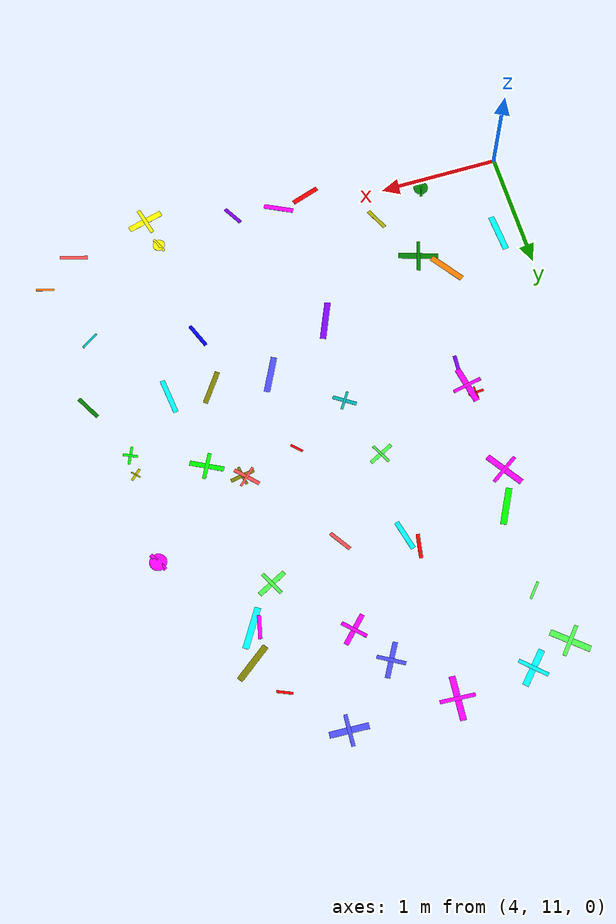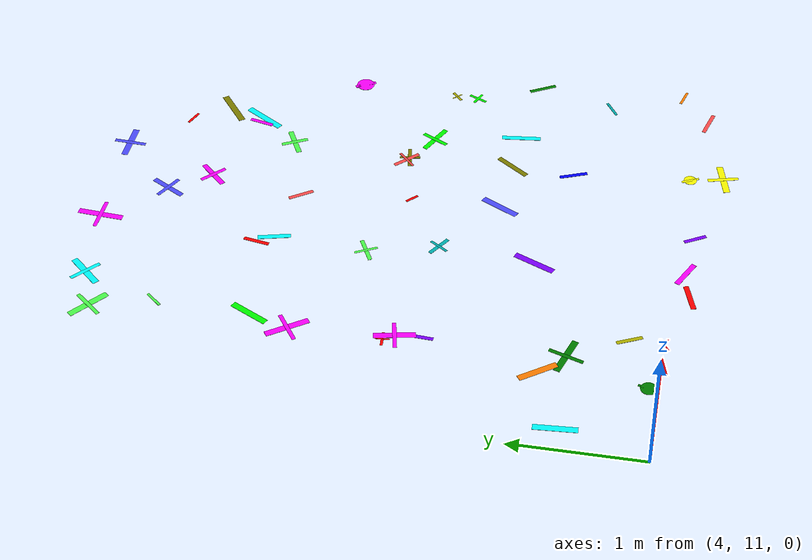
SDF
<sdf version="1.6">
 <world name="default">
  <model name="letter_Y_1451">
   <static>true</static>
   <pose>4.19 11.67 0.011 0 0 4.778</pose>
   <link name="link">
    <visual name="visual">
     <geometry><box><size>0.32 0.05 0.002</size></box></geometry>
     <material>
      <ambient>0.0 1.0 1.0 1</ambient>
      <diffuse>0.0 1.0 1.0 1</diffuse>
      <specular>0.1 0.1 0.1 1</specular>
     </material>
    </visual>
   </link>
  </model>
  <model name="letter_U_1522">
   <static>true</static>
   <pose>5.13 11.25 0.011 0 0 2.018</pose>
   <link name="link">
    <visual name="visual">
     <geometry><box><size>0.20 0.03 0.002</size></box></geometry>
     <material>
      <ambient>0.7 0.7 0.0 1</ambient>
      <diffuse>0.7 0.7 0.0 1</diffuse>
      <specular>0.1 0.1 0.1 1</specular>
     </material>
    </visual>
   </link>
  </model>
  <model name="letter_O_1523">
   <static>true</static>
   <pose>4.68 11.07 0.008 0 0 1.286</pose>
   <link name="link">
    <visual name="visual">
     <geometry><box><size>0.16 0.02 0.002</size></box></geometry>
     <material>
      <ambient>0.0 0.5 0.0 1</ambient>
      <diffuse>0.0 0.5 0.0 1</diffuse>
      <specular>0.1 0.1 0.1 1</specular>
     </material>
    </visual>
    <visual name="visual2">
     <geometry><cylinder><radius>0.06</radius><length>0.002</length></cylinder></geometry>
     <material><ambient>0.0 0.5 0.0 1</ambient><diffuse>0.0 0.5 0.0 1</diffuse></material>
    </visual>
   </link>
  </model>
  <model name="letter_J_1524">
   <static>true</static>
   <pose>4.71 11.86 0.010 0 0 2.192</pose>
   <link name="link">
    <visual name="visual">
     <geometry><box><size>0.31 0.05 0.002</size></box></geometry>
     <material>
      <ambient>1.0 0.5 0.0 1</ambient>
      <diffuse>1.0 0.5 0.0 1</diffuse>
      <specular>0.1 0.1 0.1 1</specular>
     </material>
    </visual>
   </link>
  </model>
  <model name="letter_T_1525">
   <static>true</static>
   <pose>4.90 11.68 0.004 0 0 2.827</pose>
   <link name="link">
    <visual name="visual">
     <geometry><box><size>0.33 0.05 0.002</size></box></geometry>
     <material>
      <ambient>0.0 0.5 0.0 1</ambient>
      <diffuse>0.0 0.5 0.0 1</diffuse>
      <specular>0.1 0.1 0.1 1</specular>
     </material>
    </visual>
    <visual name="visual2">
     <pose>0 0 0.001 0 0 1.57</pose>
     <geometry><box><size>0.27 0.03 0.001</size></box></geometry>
     <material><ambient>0.0 0.5 0.0 1</ambient><diffuse>0.0 0.5 0.0 1</diffuse></material>
    </visual>
   </link>
  </model>
  <model name="letter_F_1526">
   <static>true</static>
   <pose>4.89 12.92 0.010 0 0 1.770</pose>
   <link name="link">
    <visual name="visual">
     <geometry><box><size>0.31 0.05 0.002</size></box></geometry>
     <material>
      <ambient>1.0 0.0 1.0 1</ambient>
      <diffuse>1.0 0.0 1.0 1</diffuse>
      <specular>0.1 0.1 0.1 1</specular>
     </material>
    </visual>
    <visual name="visual2">
     <pose>0 0 0.001 0 0 1.57</pose>
     <geometry><box><size>0.25 0.03 0.001</size></box></geometry>
     <material><ambient>1.0 0.0 1.0 1</ambient><diffuse>1.0 0.0 1.0 1</diffuse></material>
    </visual>
   </link>
  </model>
  <model name="letter_P_1527">
   <static>true</static>
   <pose>4.91 12.74 0.004 0 0 1.507</pose>
   <link name="link">
    <visual name="visual">
     <geometry><box><size>0.20 0.03 0.002</size></box></geometry>
     <material>
      <ambient>0.5 0.0 1.0 1</ambient>
      <diffuse>0.5 0.0 1.0 1</diffuse>
      <specular>0.1 0.1 0.1 1</specular>
     </material>
    </visual>
   </link>
  </model>
  <model name="letter_H_1528">
   <static>true</static>
   <pose>4.84 13.00 0.008 0 0 0.061</pose>
   <link name="link">
    <visual name="visual">
     <geometry><box><size>0.13 0.02 0.002</size></box></geometry>
     <material>
      <ambient>1.0 0.0 0.0 1</ambient>
      <diffuse>1.0 0.0 0.0 1</diffuse>
      <specular>0.1 0.1 0.1 1</specular>
     </material>
    </visual>
    <visual name="visual2">
     <pose>0 0 0.001 0 0 1.57</pose>
     <geometry><box><size>0.11 0.01 0.001</size></box></geometry>
     <material><ambient>1.0 0.0 0.0 1</ambient><diffuse>1.0 0.0 0.0 1</diffuse></material>
    </visual>
   </link>
  </model>
  <model name="letter_E_1529">
   <static>true</static>
   <pose>4.84 13.70 0.006 0 0 5.309</pose>
   <link name="link">
    <visual name="visual">
     <geometry><box><size>0.34 0.05 0.002</size></box></geometry>
     <material>
      <ambient>1.0 0.0 1.0 1</ambient>
      <diffuse>1.0 0.0 1.0 1</diffuse>
      <specular>0.1 0.1 0.1 1</specular>
     </material>
    </visual>
    <visual name="visual2">
     <pose>0 0 0.001 0 0 1.57</pose>
     <geometry><box><size>0.27 0.03 0.001</size></box></geometry>
     <material><ambient>1.0 0.0 1.0 1</ambient><diffuse>1.0 0.0 1.0 1</diffuse></material>
    </visual>
   </link>
  </model>
  <model name="letter_Y_1530">
   <static>true</static>
   <pose>4.93 14.00 0.011 0 0 1.092</pose>
   <link name="link">
    <visual name="visual">
     <geometry><box><size>0.31 0.05 0.002</size></box></geometry>
     <material>
      <ambient>0.0 1.0 0.0 1</ambient>
      <diffuse>0.0 1.0 0.0 1</diffuse>
      <specular>0.1 0.1 0.1 1</specular>
     </material>
    </visual>
   </link>
  </model>
  <model name="letter_H_1531">
   <static>true</static>
   <pose>4.82 15.18 0.009 0 0 2.438</pose>
   <link name="link">
    <visual name="visual">
     <geometry><box><size>0.33 0.05 0.002</size></box></geometry>
     <material>
      <ambient>0.3 1.0 0.3 1</ambient>
      <diffuse>0.3 1.0 0.3 1</diffuse>
      <specular>0.1 0.1 0.1 1</specular>
     </material>
    </visual>
    <visual name="visual2">
     <pose>0 0 0.001 0 0 1.57</pose>
     <geometry><box><size>0.26 0.03 0.001</size></box></geometry>
     <material><ambient>0.3 1.0 0.3 1</ambient><diffuse>0.3 1.0 0.3 1</diffuse></material>
    </visual>
   </link>
  </model>
  <model name="letter_T_1532">
   <static>true</static>
   <pose>5.16 15.30 0.006 0 0 0.819</pose>
   <link name="link">
    <visual name="visual">
     <geometry><box><size>0.31 0.05 0.002</size></box></geometry>
     <material>
      <ambient>0.0 1.0 1.0 1</ambient>
      <diffuse>0.0 1.0 1.0 1</diffuse>
      <specular>0.1 0.1 0.1 1</specular>
     </material>
    </visual>
    <visual name="visual2">
     <pose>0 0 0.001 0 0 1.57</pose>
     <geometry><box><size>0.25 0.03 0.001</size></box></geometry>
     <material><ambient>0.0 1.0 1.0 1</ambient><diffuse>0.0 1.0 1.0 1</diffuse></material>
    </visual>
   </link>
  </model>
  <model name="letter_W_1533">
   <static>true</static>
   <pose>4.95 14.72 0.009 0 0 0.861</pose>
   <link name="link">
    <visual name="visual">
     <geometry><box><size>0.15 0.02 0.002</size></box></geometry>
     <material>
      <ambient>0.3 1.0 0.3 1</ambient>
      <diffuse>0.3 1.0 0.3 1</diffuse>
      <specular>0.1 0.1 0.1 1</specular>
     </material>
    </visual>
   </link>
  </model>
  <model name="letter_P_1598">
   <static>true</static>
   <pose>5.64 10.86 0.012 0 0 0.319</pose>
   <link name="link">
    <visual name="visual">
     <geometry><box><size>0.24 0.04 0.002</size></box></geometry>
     <material>
      <ambient>1.0 0.0 0.0 1</ambient>
      <diffuse>1.0 0.0 0.0 1</diffuse>
      <specular>0.1 0.1 0.1 1</specular>
     </material>
    </visual>
   </link>
  </model>
  <model name="letter_R_1599">
   <static>true</static>
   <pose>5.89 10.91 0.005 0 0 2.683</pose>
   <link name="link">
    <visual name="visual">
     <geometry><box><size>0.25 0.04 0.002</size></box></geometry>
     <material>
      <ambient>1.0 0.0 1.0 1</ambient>
      <diffuse>1.0 0.0 1.0 1</diffuse>
      <specular>0.1 0.1 0.1 1</specular>
     </material>
    </visual>
   </link>
  </model>
  <model name="letter_X_1600">
   <static>true</static>
   <pose>6.28 10.87 0.012 0 0 5.237</pose>
   <link name="link">
    <visual name="visual">
     <geometry><box><size>0.18 0.03 0.002</size></box></geometry>
     <material>
      <ambient>0.5 0.0 1.0 1</ambient>
      <diffuse>0.5 0.0 1.0 1</diffuse>
      <specular>0.1 0.1 0.1 1</specular>
     </material>
    </visual>
   </link>
  </model>
  <model name="letter_R_1601">
   <static>true</static>
   <pose>6.39 12.37 0.010 0 0 4.239</pose>
   <link name="link">
    <visual name="visual">
     <geometry><box><size>0.31 0.05 0.002</size></box></geometry>
     <material>
      <ambient>0.3 0.3 1.0 1</ambient>
      <diffuse>0.3 0.3 1.0 1</diffuse>
      <specular>0.1 0.1 0.1 1</specular>
     </material>
    </visual>
   </link>
  </model>
  <model name="letter_X_1602">
   <static>true</static>
   <pose>5.82 12.03 0.004 0 0 4.301</pose>
   <link name="link">
    <visual name="visual">
     <geometry><box><size>0.33 0.05 0.002</size></box></geometry>
     <material>
      <ambient>0.5 0.0 1.0 1</ambient>
      <diffuse>0.5 0.0 1.0 1</diffuse>
      <specular>0.1 0.1 0.1 1</specular>
     </material>
    </visual>
   </link>
  </model>
  <model name="letter_W_1603">
   <static>true</static>
   <pose>6.37 13.05 0.009 0 0 5.495</pose>
   <link name="link">
    <visual name="visual">
     <geometry><box><size>0.11 0.02 0.002</size></box></geometry>
     <material>
      <ambient>1.0 0.0 0.0 1</ambient>
      <diffuse>1.0 0.0 0.0 1</diffuse>
      <specular>0.1 0.1 0.1 1</specular>
     </material>
    </visual>
   </link>
  </model>
  <model name="letter_F_1604">
   <static>true</static>
   <pose>5.88 12.76 0.003 0 0 5.698</pose>
   <link name="link">
    <visual name="visual">
     <geometry><box><size>0.20 0.03 0.002</size></box></geometry>
     <material>
      <ambient>0.0 0.7 0.7 1</ambient>
      <diffuse>0.0 0.7 0.7 1</diffuse>
      <specular>0.1 0.1 0.1 1</specular>
     </material>
    </visual>
    <visual name="visual2">
     <pose>0 0 0.001 0 0 1.57</pose>
     <geometry><box><size>0.16 0.02 0.001</size></box></geometry>
     <material><ambient>0.0 0.7 0.7 1</ambient><diffuse>0.0 0.7 0.7 1</diffuse></material>
    </visual>
   </link>
  </model>
  <model name="letter_A_1605">
   <static>true</static>
   <pose>5.74 13.29 0.007 0 0 3.612</pose>
   <link name="link">
    <visual name="visual">
     <geometry><box><size>0.22 0.03 0.002</size></box></geometry>
     <material>
      <ambient>0.3 1.0 0.3 1</ambient>
      <diffuse>0.3 1.0 0.3 1</diffuse>
      <specular>0.1 0.1 0.1 1</specular>
     </material>
    </visual>
    <visual name="visual2">
     <pose>0 0 0.001 0 0 1.57</pose>
     <geometry><box><size>0.18 0.02 0.001</size></box></geometry>
     <material><ambient>0.3 1.0 0.3 1</ambient><diffuse>0.3 1.0 0.3 1</diffuse></material>
    </visual>
   </link>
  </model>
  <model name="letter_Y_1606">
   <static>true</static>
   <pose>6.27 13.90 0.007 0 0 5.298</pose>
   <link name="link">
    <visual name="visual">
     <geometry><box><size>0.20 0.03 0.002</size></box></geometry>
     <material>
      <ambient>1.0 0.3 0.3 1</ambient>
      <diffuse>1.0 0.3 0.3 1</diffuse>
      <specular>0.1 0.1 0.1 1</specular>
     </material>
    </visual>
   </link>
  </model>
  <model name="letter_M_1607">
   <static>true</static>
   <pose>5.77 14.00 0.006 0 0 4.956</pose>
   <link name="link">
    <visual name="visual">
     <geometry><box><size>0.25 0.04 0.002</size></box></geometry>
     <material>
      <ambient>0.0 1.0 1.0 1</ambient>
      <diffuse>0.0 1.0 1.0 1</diffuse>
      <specular>0.1 0.1 0.1 1</specular>
     </material>
    </visual>
   </link>
  </model>
  <model name="letter_U_1608">
   <static>true</static>
   <pose>5.69 14.12 0.013 0 0 4.534</pose>
   <link name="link">
    <visual name="visual">
     <geometry><box><size>0.20 0.03 0.002</size></box></geometry>
     <material>
      <ambient>1.0 0.0 0.0 1</ambient>
      <diffuse>1.0 0.0 0.0 1</diffuse>
      <specular>0.1 0.1 0.1 1</specular>
     </material>
    </visual>
   </link>
  </model>
  <model name="letter_T_1609">
   <static>true</static>
   <pose>6.38 14.62 0.012 0 0 0.790</pose>
   <link name="link">
    <visual name="visual">
     <geometry><box><size>0.27 0.04 0.002</size></box></geometry>
     <material>
      <ambient>1.0 0.0 1.0 1</ambient>
      <diffuse>1.0 0.0 1.0 1</diffuse>
      <specular>0.1 0.1 0.1 1</specular>
     </material>
    </visual>
    <visual name="visual2">
     <pose>0 0 0.001 0 0 1.57</pose>
     <geometry><box><size>0.22 0.03 0.001</size></box></geometry>
     <material><ambient>1.0 0.0 1.0 1</ambient><diffuse>1.0 0.0 1.0 1</diffuse></material>
    </visual>
   </link>
  </model>
  <model name="letter_E_1610">
   <static>true</static>
   <pose>5.79 15.36 0.004 0 0 1.503</pose>
   <link name="link">
    <visual name="visual">
     <geometry><box><size>0.35 0.05 0.002</size></box></geometry>
     <material>
      <ambient>1.0 0.0 1.0 1</ambient>
      <diffuse>1.0 0.0 1.0 1</diffuse>
      <specular>0.1 0.1 0.1 1</specular>
     </material>
    </visual>
    <visual name="visual2">
     <pose>0 0 0.001 0 0 1.57</pose>
     <geometry><box><size>0.28 0.03 0.001</size></box></geometry>
     <material><ambient>1.0 0.0 1.0 1</ambient><diffuse>1.0 0.0 1.0 1</diffuse></material>
    </visual>
   </link>
  </model>
  <model name="letter_H_1611">
   <static>true</static>
   <pose>6.18 14.93 0.005 0 0 4.193</pose>
   <link name="link">
    <visual name="visual">
     <geometry><box><size>0.29 0.04 0.002</size></box></geometry>
     <material>
      <ambient>0.3 0.3 1.0 1</ambient>
      <diffuse>0.3 0.3 1.0 1</diffuse>
      <specular>0.1 0.1 0.1 1</specular>
     </material>
    </visual>
    <visual name="visual2">
     <pose>0 0 0.001 0 0 1.57</pose>
     <geometry><box><size>0.23 0.03 0.001</size></box></geometry>
     <material><ambient>0.3 0.3 1.0 1</ambient><diffuse>0.3 0.3 1.0 1</diffuse></material>
    </visual>
   </link>
  </model>
  <model name="letter_H_1675">
   <static>true</static>
   <pose>7.00 10.71 0.012 0 0 0.258</pose>
   <link name="link">
    <visual name="visual">
     <geometry><box><size>0.30 0.05 0.002</size></box></geometry>
     <material>
      <ambient>1.0 1.0 0.0 1</ambient>
      <diffuse>1.0 1.0 0.0 1</diffuse>
      <specular>0.1 0.1 0.1 1</specular>
     </material>
    </visual>
    <visual name="visual2">
     <pose>0 0 0.001 0 0 1.57</pose>
     <geometry><box><size>0.24 0.03 0.001</size></box></geometry>
     <material><ambient>1.0 1.0 0.0 1</ambient><diffuse>1.0 1.0 0.0 1</diffuse></material>
    </visual>
   </link>
  </model>
  <model name="letter_C_1677">
   <static>true</static>
   <pose>6.95 10.96 0.010 0 0 2.009</pose>
   <link name="link">
    <visual name="visual">
     <geometry><box><size>0.14 0.02 0.002</size></box></geometry>
     <material>
      <ambient>1.0 1.0 0.0 1</ambient>
      <diffuse>1.0 1.0 0.0 1</diffuse>
      <specular>0.1 0.1 0.1 1</specular>
     </material>
    </visual>
    <visual name="visual2">
     <geometry><cylinder><radius>0.05</radius><length>0.002</length></cylinder></geometry>
     <material><ambient>1.0 1.0 0.0 1</ambient><diffuse>1.0 1.0 0.0 1</diffuse></material>
    </visual>
   </link>
  </model>
  <model name="letter_V_1678">
   <static>true</static>
   <pose>7.23 12.32 0.009 0 0 1.685</pose>
   <link name="link">
    <visual name="visual">
     <geometry><box><size>0.30 0.04 0.002</size></box></geometry>
     <material>
      <ambient>0.0 1.0 1.0 1</ambient>
      <diffuse>0.0 1.0 1.0 1</diffuse>
      <specular>0.1 0.1 0.1 1</specular>
     </material>
    </visual>
   </link>
  </model>
  <model name="letter_V_1679">
   <static>true</static>
   <pose>6.88 12.34 0.004 0 0 4.093</pose>
   <link name="link">
    <visual name="visual">
     <geometry><box><size>0.29 0.04 0.002</size></box></geometry>
     <material>
      <ambient>0.5 0.5 0.0 1</ambient>
      <diffuse>0.5 0.5 0.0 1</diffuse>
      <specular>0.1 0.1 0.1 1</specular>
     </material>
    </visual>
   </link>
  </model>
  <model name="letter_S_1680">
   <static>true</static>
   <pose>6.86 11.86 0.004 0 0 5.091</pose>
   <link name="link">
    <visual name="visual">
     <geometry><box><size>0.22 0.03 0.002</size></box></geometry>
     <material>
      <ambient>0.0 0.0 1.0 1</ambient>
      <diffuse>0.0 0.0 1.0 1</diffuse>
      <specular>0.1 0.1 0.1 1</specular>
     </material>
    </visual>
   </link>
  </model>
  <model name="letter_L_1681">
   <static>true</static>
   <pose>7.10 12.99 0.007 0 0 2.663</pose>
   <link name="link">
    <visual name="visual">
     <geometry><box><size>0.28 0.04 0.002</size></box></geometry>
     <material>
      <ambient>0.0 1.0 0.0 1</ambient>
      <diffuse>0.0 1.0 0.0 1</diffuse>
      <specular>0.1 0.1 0.1 1</specular>
     </material>
    </visual>
    <visual name="visual2">
     <pose>0 0 0.001 0 0 1.57</pose>
     <geometry><box><size>0.22 0.03 0.001</size></box></geometry>
     <material><ambient>0.0 1.0 0.0 1</ambient><diffuse>0.0 1.0 0.0 1</diffuse></material>
    </visual>
   </link>
  </model>
  <model name="letter_T_1682">
   <static>true</static>
   <pose>6.85 13.15 0.004 0 0 0.169</pose>
   <link name="link">
    <visual name="visual">
     <geometry><box><size>0.20 0.03 0.002</size></box></geometry>
     <material>
      <ambient>0.5 0.5 0.0 1</ambient>
      <diffuse>0.5 0.5 0.0 1</diffuse>
      <specular>0.1 0.1 0.1 1</specular>
     </material>
    </visual>
    <visual name="visual2">
     <pose>0 0 0.001 0 0 1.57</pose>
     <geometry><box><size>0.16 0.02 0.001</size></box></geometry>
     <material><ambient>0.5 0.5 0.0 1</ambient><diffuse>0.5 0.5 0.0 1</diffuse></material>
    </visual>
   </link>
  </model>
  <model name="letter_E_1683">
   <static>true</static>
   <pose>6.82 13.17 0.006 0 0 5.471</pose>
   <link name="link">
    <visual name="visual">
     <geometry><box><size>0.23 0.03 0.002</size></box></geometry>
     <material>
      <ambient>1.0 0.3 0.3 1</ambient>
      <diffuse>1.0 0.3 0.3 1</diffuse>
      <specular>0.1 0.1 0.1 1</specular>
     </material>
    </visual>
    <visual name="visual2">
     <pose>0 0 0.001 0 0 1.57</pose>
     <geometry><box><size>0.18 0.02 0.001</size></box></geometry>
     <material><ambient>1.0 0.3 0.3 1</ambient><diffuse>1.0 0.3 0.3 1</diffuse></material>
    </visual>
   </link>
  </model>
  <model name="letter_D_1684">
   <static>true</static>
   <pose>7.13 14.38 0.006 0 0 4.149</pose>
   <link name="link">
    <visual name="visual">
     <geometry><box><size>0.34 0.05 0.002</size></box></geometry>
     <material>
      <ambient>0.0 1.0 1.0 1</ambient>
      <diffuse>0.0 1.0 1.0 1</diffuse>
      <specular>0.1 0.1 0.1 1</specular>
     </material>
    </visual>
   </link>
  </model>
  <model name="letter_W_1685">
   <static>true</static>
   <pose>7.07 14.39 0.009 0 0 1.345</pose>
   <link name="link">
    <visual name="visual">
     <geometry><box><size>0.19 0.03 0.002</size></box></geometry>
     <material>
      <ambient>1.0 0.0 1.0 1</ambient>
      <diffuse>1.0 0.0 1.0 1</diffuse>
      <specular>0.1 0.1 0.1 1</specular>
     </material>
    </visual>
   </link>
  </model>
  <model name="letter_L_1686">
   <static>true</static>
   <pose>6.88 14.08 0.005 0 0 0.469</pose>
   <link name="link">
    <visual name="visual">
     <geometry><box><size>0.26 0.04 0.002</size></box></geometry>
     <material>
      <ambient>0.3 1.0 0.3 1</ambient>
      <diffuse>0.3 1.0 0.3 1</diffuse>
      <specular>0.1 0.1 0.1 1</specular>
     </material>
    </visual>
    <visual name="visual2">
     <pose>0 0 0.001 0 0 1.57</pose>
     <geometry><box><size>0.21 0.03 0.001</size></box></geometry>
     <material><ambient>0.3 1.0 0.3 1</ambient><diffuse>0.3 1.0 0.3 1</diffuse></material>
    </visual>
   </link>
  </model>
  <model name="letter_H_1687">
   <static>true</static>
   <pose>6.65 15.36 0.007 0 0 6.234</pose>
   <link name="link">
    <visual name="visual">
     <geometry><box><size>0.31 0.05 0.002</size></box></geometry>
     <material>
      <ambient>0.3 0.3 1.0 1</ambient>
      <diffuse>0.3 0.3 1.0 1</diffuse>
      <specular>0.1 0.1 0.1 1</specular>
     </material>
    </visual>
    <visual name="visual2">
     <pose>0 0 0.001 0 0 1.57</pose>
     <geometry><box><size>0.25 0.03 0.001</size></box></geometry>
     <material><ambient>0.3 0.3 1.0 1</ambient><diffuse>0.3 0.3 1.0 1</diffuse></material>
    </visual>
   </link>
  </model>
  <model name="letter_N_1688">
   <static>true</static>
   <pose>7.03 14.94 0.007 0 0 2.733</pose>
   <link name="link">
    <visual name="visual">
     <geometry><box><size>0.13 0.02 0.002</size></box></geometry>
     <material>
      <ambient>1.0 0.0 0.0 1</ambient>
      <diffuse>1.0 0.0 0.0 1</diffuse>
      <specular>0.1 0.1 0.1 1</specular>
     </material>
    </visual>
   </link>
  </model>
  <model name="letter_X_1689">
   <static>true</static>
   <pose>7.20 14.65 0.009 0 0 3.785</pose>
   <link name="link">
    <visual name="visual">
     <geometry><box><size>0.33 0.05 0.002</size></box></geometry>
     <material>
      <ambient>0.5 0.5 0.0 1</ambient>
      <diffuse>0.5 0.5 0.0 1</diffuse>
      <specular>0.1 0.1 0.1 1</specular>
     </material>
    </visual>
   </link>
  </model>
  <model name="letter_D_1756">
   <static>true</static>
   <pose>7.96 11.09 0.004 0 0 6.009</pose>
   <link name="link">
    <visual name="visual">
     <geometry><box><size>0.15 0.02 0.002</size></box></geometry>
     <material>
      <ambient>1.0 0.5 0.0 1</ambient>
      <diffuse>1.0 0.5 0.0 1</diffuse>
      <specular>0.1 0.1 0.1 1</specular>
     </material>
    </visual>
   </link>
  </model>
  <model name="letter_M_1758">
   <static>true</static>
   <pose>7.66 10.87 0.012 0 0 2.866</pose>
   <link name="link">
    <visual name="visual">
     <geometry><box><size>0.23 0.03 0.002</size></box></geometry>
     <material>
      <ambient>1.0 0.3 0.3 1</ambient>
      <diffuse>1.0 0.3 0.3 1</diffuse>
      <specular>0.1 0.1 0.1 1</specular>
     </material>
    </visual>
   </link>
  </model>
  <model name="letter_V_1760">
   <static>true</static>
   <pose>7.72 11.65 0.004 0 0 0.574</pose>
   <link name="link">
    <visual name="visual">
     <geometry><box><size>0.16 0.02 0.002</size></box></geometry>
     <material>
      <ambient>0.0 0.7 0.7 1</ambient>
      <diffuse>0.0 0.7 0.7 1</diffuse>
      <specular>0.1 0.1 0.1 1</specular>
     </material>
    </visual>
   </link>
  </model>
  <model name="letter_M_1761">
   <static>true</static>
   <pose>7.88 12.23 0.008 0 0 2.072</pose>
   <link name="link">
    <visual name="visual">
     <geometry><box><size>0.22 0.03 0.002</size></box></geometry>
     <material>
      <ambient>0.0 0.5 0.0 1</ambient>
      <diffuse>0.0 0.5 0.0 1</diffuse>
      <specular>0.1 0.1 0.1 1</specular>
     </material>
    </visual>
   </link>
  </model>
  <model name="letter_A_1762">
   <static>true</static>
   <pose>7.66 12.90 0.009 0 0 3.890</pose>
   <link name="link">
    <visual name="visual">
     <geometry><box><size>0.11 0.02 0.002</size></box></geometry>
     <material>
      <ambient>0.7 0.7 0.0 1</ambient>
      <diffuse>0.7 0.7 0.0 1</diffuse>
      <specular>0.1 0.1 0.1 1</specular>
     </material>
    </visual>
    <visual name="visual2">
     <pose>0 0 0.001 0 0 1.57</pose>
     <geometry><box><size>0.09 0.01 0.001</size></box></geometry>
     <material><ambient>0.7 0.7 0.0 1</ambient><diffuse>0.7 0.7 0.0 1</diffuse></material>
    </visual>
   </link>
  </model>
  <model name="letter_E_1763">
   <static>true</static>
   <pose>7.66 12.73 0.011 0 0 1.145</pose>
   <link name="link">
    <visual name="visual">
     <geometry><box><size>0.15 0.02 0.002</size></box></geometry>
     <material>
      <ambient>0.0 1.0 0.0 1</ambient>
      <diffuse>0.0 1.0 0.0 1</diffuse>
      <specular>0.1 0.1 0.1 1</specular>
     </material>
    </visual>
    <visual name="visual2">
     <pose>0 0 0.001 0 0 1.57</pose>
     <geometry><box><size>0.12 0.02 0.001</size></box></geometry>
     <material><ambient>0.0 1.0 0.0 1</ambient><diffuse>0.0 1.0 0.0 1</diffuse></material>
    </visual>
   </link>
  </model>
  <model name="letter_G_1766">
   <static>true</static>
   <pose>7.68 13.66 0.012 0 0 2.071</pose>
   <link name="link">
    <visual name="visual">
     <geometry><box><size>0.17 0.03 0.002</size></box></geometry>
     <material>
      <ambient>1.0 0.0 1.0 1</ambient>
      <diffuse>1.0 0.0 1.0 1</diffuse>
      <specular>0.1 0.1 0.1 1</specular>
     </material>
    </visual>
    <visual name="visual2">
     <geometry><cylinder><radius>0.07</radius><length>0.002</length></cylinder></geometry>
     <material><ambient>1.0 0.0 1.0 1</ambient><diffuse>1.0 0.0 1.0 1</diffuse></material>
    </visual>
   </link>
  </model>
 </world>
</sdf>
